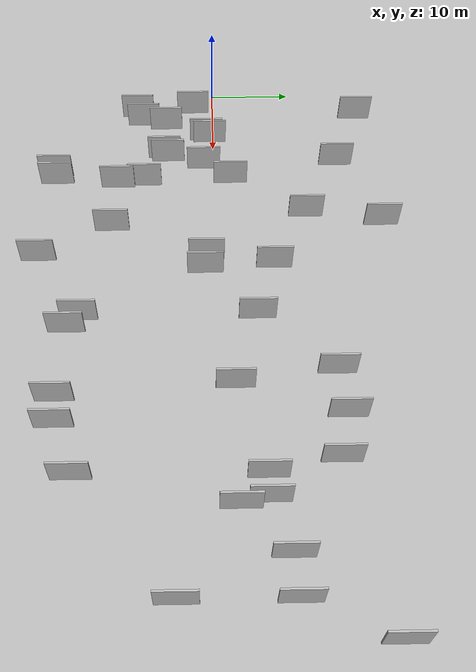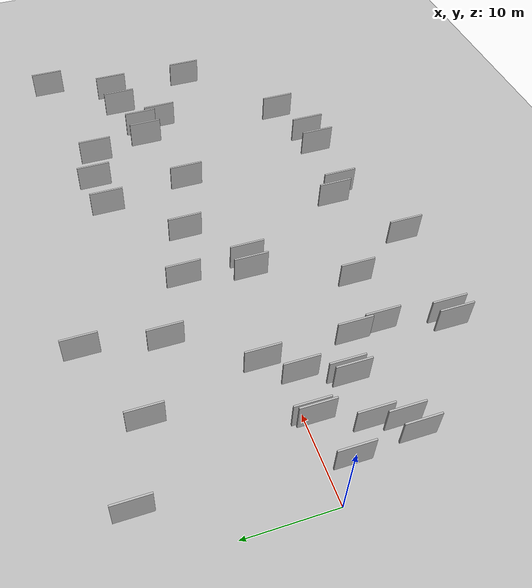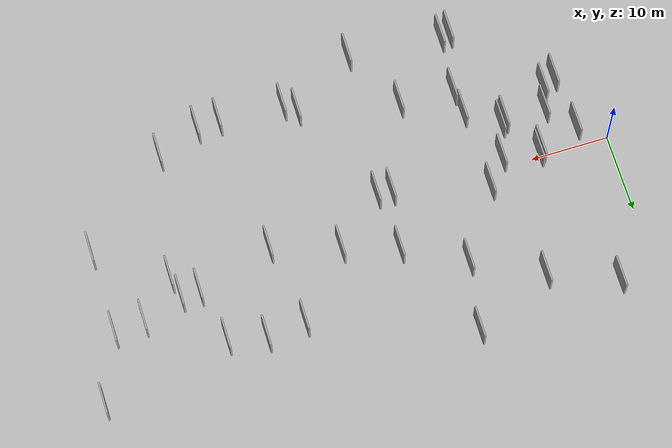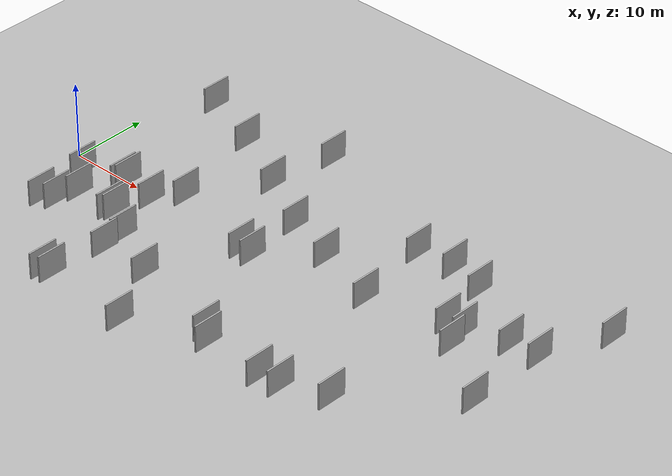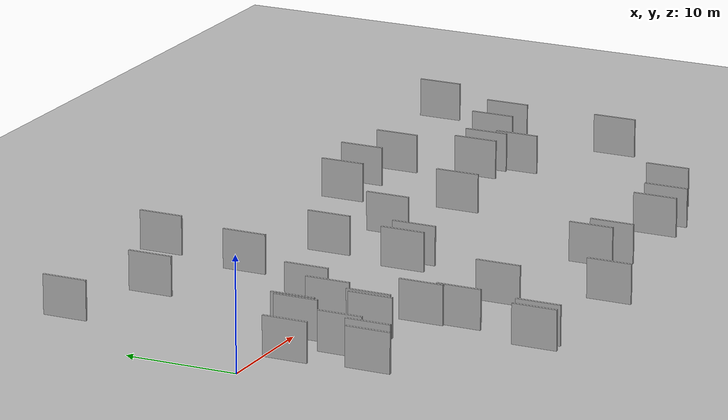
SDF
<?xml version="1.0" encoding="utf-8"?>

<sdf version="1.6">

   <world name="default">

      <gui fullscreen="0">

         <camera name="user_camera">

            <pose>-15 0 4.57585 0 0 0</pose>

            <view_controller>orbit</view_controller>

         </camera>

      </gui>

      <scene>

         <sky>

           <clouds>

             <speed>12</speed>

           </clouds>

         </sky>

         <ambient>0.4 0.4 0.4 1</ambient>

         <background>0.7 0.7 0.7 1</background>

         <shadows>1</shadows>

      </scene>

      <gravity>0 0 -9.8066</gravity>

      <magnetic_field>6e-06 2.3e-05 -4.2e-05</magnetic_field>

      <physics default="0" name="default_physics" type="ode">

         <ode>

            <solver>

               <type>quick</type>

               <iters>10</iters>

               <sor>1.0</sor>

               <use_dynamic_moi_rescaling>0</use_dynamic_moi_rescaling>

            </solver>

            <constraints>

               <cfm>0</cfm>

               <erp>0.2</erp>

               <contact_max_correcting_vel>100</contact_max_correcting_vel>

               <contact_surface_layer>0.001</contact_surface_layer>

            </constraints>

         </ode>

         <max_step_size>0.004</max_step_size>

         <real_time_factor>1</real_time_factor>

         <real_time_update_rate>250</real_time_update_rate>

      </physics>

      <light name="sun" type="directional">

         <cast_shadows>1</cast_shadows>

         <pose>0 0 10 0 0 0</pose>

         <diffuse>0.8 0.8 0.8 1</diffuse>

         <specular>0.2 0.2 0.2 1</specular>

         <attenuation>

            <range>1000</range>

            <constant>0.9</constant>

            <linear>0.01</linear>

            <quadratic>0.001</quadratic>

         </attenuation>

         <direction>-0.5 0.1 -0.9</direction>

      </light>

      <include>

         <name>ground_plane_1</name>

         <uri>model://HANNAS_ground_plane</uri>

         <pose>0 0 0  0 0 0</pose>

      </include>

      <include>

         <name>ground_plane_2</name>

         <uri>model://HANNAS_ground_plane</uri>

         <pose>100 0 0  0 0 0</pose>

      </include>

      <model name="HANNAS_wall_1">

         <static>1</static>

         <pose frame="">28.2668 -1.0079 0.0 0.000000 0.000000 1.570796</pose>

         <link name="link">

            <pose frame="">0 0 2.00 0 0 0</pose>

            <collision name="collision">

               <geometry>

                  <box>

                     <size>4.00 0.2 4.00</size>

                  </box>

               </geometry>

               <max_contacts>10</max_contacts>

               <surface>

                  <contact>

                     <ode/>

                  </contact>

                  <bounce/>

                  <friction>

                     <torsional>

                        <ode/>

                     </torsional>

                     <ode/>

                  </friction>

               </surface>

            </collision>

            <visual name="visual">

               <cast_shadows>0</cast_shadows>

               <geometry>

                  <box>

                     <size>4.00 0.2 4.00</size>

                  </box>

               </geometry>

               <material>

                  <script>

                     <uri>model://HANNAS_wall/materials/scripts</uri>

                     <uri>model://HANNAS_wall/materials/textures</uri>

                     <name>vrc/HANNAS_wall</name>

                  </script>

               </material>

            </visual>

            <self_collide>0</self_collide>

            <enable_wind>0</enable_wind>

            <kinematic>0</kinematic>

         </link>

      </model>

      <model name="HANNAS_wall_2">

         <static>1</static>

         <pose frame="">8.6708 -0.8842 0.0 0.000000 0.000000 1.570796</pose>

         <link name="link">

            <pose frame="">0 0 2.00 0 0 0</pose>

            <collision name="collision">

               <geometry>

                  <box>

                     <size>4.00 0.2 4.00</size>

                  </box>

               </geometry>

               <max_contacts>10</max_contacts>

               <surface>

                  <contact>

                     <ode/>

                  </contact>

                  <bounce/>

                  <friction>

                     <torsional>

                        <ode/>

                     </torsional>

                     <ode/>

                  </friction>

               </surface>

            </collision>

            <visual name="visual">

               <cast_shadows>0</cast_shadows>

               <geometry>

                  <box>

                     <size>4.00 0.2 4.00</size>

                  </box>

               </geometry>

               <material>

                  <script>

                     <uri>model://HANNAS_wall/materials/scripts</uri>

                     <uri>model://HANNAS_wall/materials/textures</uri>

                     <name>vrc/HANNAS_wall</name>

                  </script>

               </material>

            </visual>

            <self_collide>0</self_collide>

            <enable_wind>0</enable_wind>

            <kinematic>0</kinematic>

         </link>

      </model>

      <model name="HANNAS_wall_3">

         <static>1</static>

         <pose frame="">54.6762 -14.0078 0.0 0.000000 0.000000 1.570796</pose>

         <link name="link">

            <pose frame="">0 0 2.00 0 0 0</pose>

            <collision name="collision">

               <geometry>

                  <box>

                     <size>4.00 0.2 4.00</size>

                  </box>

               </geometry>

               <max_contacts>10</max_contacts>

               <surface>

                  <contact>

                     <ode/>

                  </contact>

                  <bounce/>

                  <friction>

                     <torsional>

                        <ode/>

                     </torsional>

                     <ode/>

                  </friction>

               </surface>

            </collision>

            <visual name="visual">

               <cast_shadows>0</cast_shadows>

               <geometry>

                  <box>

                     <size>4.00 0.2 4.00</size>

                  </box>

               </geometry>

               <material>

                  <script>

                     <uri>model://HANNAS_wall/materials/scripts</uri>

                     <uri>model://HANNAS_wall/materials/textures</uri>

                     <name>vrc/HANNAS_wall</name>

                  </script>

               </material>

            </visual>

            <self_collide>0</self_collide>

            <enable_wind>0</enable_wind>

            <kinematic>0</kinematic>

         </link>

      </model>

      <model name="HANNAS_wall_4">

         <static>1</static>

         <pose frame="">23.3382 19.3957 0.0 0.000000 0.000000 1.570796</pose>

         <link name="link">

            <pose frame="">0 0 2.00 0 0 0</pose>

            <collision name="collision">

               <geometry>

                  <box>

                     <size>4.00 0.2 4.00</size>

                  </box>

               </geometry>

               <max_contacts>10</max_contacts>

               <surface>

                  <contact>

                     <ode/>

                  </contact>

                  <bounce/>

                  <friction>

                     <torsional>

                        <ode/>

                     </torsional>

                     <ode/>

                  </friction>

               </surface>

            </collision>

            <visual name="visual">

               <cast_shadows>0</cast_shadows>

               <geometry>

                  <box>

                     <size>4.00 0.2 4.00</size>

                  </box>

               </geometry>

               <material>

                  <script>

                     <uri>model://HANNAS_wall/materials/scripts</uri>

                     <uri>model://HANNAS_wall/materials/textures</uri>

                     <name>vrc/HANNAS_wall</name>

                  </script>

               </material>

            </visual>

            <self_collide>0</self_collide>

            <enable_wind>0</enable_wind>

            <kinematic>0</kinematic>

         </link>

      </model>

      <model name="HANNAS_wall_5">

         <static>1</static>

         <pose frame="">29.5425 6.5481 0.0 0.000000 0.000000 1.570796</pose>

         <link name="link">

            <pose frame="">0 0 2.00 0 0 0</pose>

            <collision name="collision">

               <geometry>

                  <box>

                     <size>4.00 0.2 4.00</size>

                  </box>

               </geometry>

               <max_contacts>10</max_contacts>

               <surface>

                  <contact>

                     <ode/>

                  </contact>

                  <bounce/>

                  <friction>

                     <torsional>

                        <ode/>

                     </torsional>

                     <ode/>

                  </friction>

               </surface>

            </collision>

            <visual name="visual">

               <cast_shadows>0</cast_shadows>

               <geometry>

                  <box>

                     <size>4.00 0.2 4.00</size>

                  </box>

               </geometry>

               <material>

                  <script>

                     <uri>model://HANNAS_wall/materials/scripts</uri>

                     <uri>model://HANNAS_wall/materials/textures</uri>

                     <name>vrc/HANNAS_wall</name>

                  </script>

               </material>

            </visual>

            <self_collide>0</self_collide>

            <enable_wind>0</enable_wind>

            <kinematic>0</kinematic>

         </link>

      </model>

      <model name="HANNAS_wall_6">

         <static>1</static>

         <pose frame="">54.7163 4.5524 0.0 0.000000 0.000000 1.570796</pose>

         <link name="link">

            <pose frame="">0 0 2.00 0 0 0</pose>

            <collision name="collision">

               <geometry>

                  <box>

                     <size>4.00 0.2 4.00</size>

                  </box>

               </geometry>

               <max_contacts>10</max_contacts>

               <surface>

                  <contact>

                     <ode/>

                  </contact>

                  <bounce/>

                  <friction>

                     <torsional>

                        <ode/>

                     </torsional>

                     <ode/>

                  </friction>

               </surface>

            </collision>

            <visual name="visual">

               <cast_shadows>0</cast_shadows>

               <geometry>

                  <box>

                     <size>4.00 0.2 4.00</size>

                  </box>

               </geometry>

               <material>

                  <script>

                     <uri>model://HANNAS_wall/materials/scripts</uri>

                     <uri>model://HANNAS_wall/materials/textures</uri>

                     <name>vrc/HANNAS_wall</name>

                  </script>

               </material>

            </visual>

            <self_collide>0</self_collide>

            <enable_wind>0</enable_wind>

            <kinematic>0</kinematic>

         </link>

      </model>

      <model name="HANNAS_wall_7">

         <static>1</static>

         <pose frame="">14.9228 -19.2196 0.0 0.000000 0.000000 1.570796</pose>

         <link name="link">

            <pose frame="">0 0 2.00 0 0 0</pose>

            <collision name="collision">

               <geometry>

                  <box>

                     <size>4.00 0.2 4.00</size>

                  </box>

               </geometry>

               <max_contacts>10</max_contacts>

               <surface>

                  <contact>

                     <ode/>

                  </contact>

                  <bounce/>

                  <friction>

                     <torsional>

                        <ode/>

                     </torsional>

                     <ode/>

                  </friction>

               </surface>

            </collision>

            <visual name="visual">

               <cast_shadows>0</cast_shadows>

               <geometry>

                  <box>

                     <size>4.00 0.2 4.00</size>

                  </box>

               </geometry>

               <material>

                  <script>

                     <uri>model://HANNAS_wall/materials/scripts</uri>

                     <uri>model://HANNAS_wall/materials/textures</uri>

                     <name>vrc/HANNAS_wall</name>

                  </script>

               </material>

            </visual>

            <self_collide>0</self_collide>

            <enable_wind>0</enable_wind>

            <kinematic>0</kinematic>

         </link>

      </model>

      <model name="HANNAS_wall_8">

         <static>1</static>

         <pose frame="">16.2496 1.9744 0.0 0.000000 0.000000 1.570796</pose>

         <link name="link">

            <pose frame="">0 0 2.00 0 0 0</pose>

            <collision name="collision">

               <geometry>

                  <box>

                     <size>4.00 0.2 4.00</size>

                  </box>

               </geometry>

               <max_contacts>10</max_contacts>

               <surface>

                  <contact>

                     <ode/>

                  </contact>

                  <bounce/>

                  <friction>

                     <torsional>

                        <ode/>

                     </torsional>

                     <ode/>

                  </friction>

               </surface>

            </collision>

            <visual name="visual">

               <cast_shadows>0</cast_shadows>

               <geometry>

                  <box>

                     <size>4.00 0.2 4.00</size>

                  </box>

               </geometry>

               <material>

                  <script>

                     <uri>model://HANNAS_wall/materials/scripts</uri>

                     <uri>model://HANNAS_wall/materials/textures</uri>

                     <name>vrc/HANNAS_wall</name>

                  </script>

               </material>

            </visual>

            <self_collide>0</self_collide>

            <enable_wind>0</enable_wind>

            <kinematic>0</kinematic>

         </link>

      </model>

      <model name="HANNAS_wall_9">

         <static>1</static>

         <pose frame="">23.8023 -11.9276 0.0 0.000000 0.000000 1.570796</pose>

         <link name="link">

            <pose frame="">0 0 2.00 0 0 0</pose>

            <collision name="collision">

               <geometry>

                  <box>

                     <size>4.00 0.2 4.00</size>

                  </box>

               </geometry>

               <max_contacts>10</max_contacts>

               <surface>

                  <contact>

                     <ode/>

                  </contact>

                  <bounce/>

                  <friction>

                     <torsional>

                        <ode/>

                     </torsional>

                     <ode/>

                  </friction>

               </surface>

            </collision>

            <visual name="visual">

               <cast_shadows>0</cast_shadows>

               <geometry>

                  <box>

                     <size>4.00 0.2 4.00</size>

                  </box>

               </geometry>

               <material>

                  <script>

                     <uri>model://HANNAS_wall/materials/scripts</uri>

                     <uri>model://HANNAS_wall/materials/textures</uri>

                     <name>vrc/HANNAS_wall</name>

                  </script>

               </material>

            </visual>

            <self_collide>0</self_collide>

            <enable_wind>0</enable_wind>

            <kinematic>0</kinematic>

         </link>

      </model>

      <model name="HANNAS_wall_10">

         <static>1</static>

         <pose frame="">36.4630 4.3665 0.0 0.000000 0.000000 1.570796</pose>

         <link name="link">

            <pose frame="">0 0 2.00 0 0 0</pose>

            <collision name="collision">

               <geometry>

                  <box>

                     <size>4.00 0.2 4.00</size>

                  </box>

               </geometry>

               <max_contacts>10</max_contacts>

               <surface>

                  <contact>

                     <ode/>

                  </contact>

                  <bounce/>

                  <friction>

                     <torsional>

                        <ode/>

                     </torsional>

                     <ode/>

                  </friction>

               </surface>

            </collision>

            <visual name="visual">

               <cast_shadows>0</cast_shadows>

               <geometry>

                  <box>

                     <size>4.00 0.2 4.00</size>

                  </box>

               </geometry>

               <material>

                  <script>

                     <uri>model://HANNAS_wall/materials/scripts</uri>

                     <uri>model://HANNAS_wall/materials/textures</uri>

                     <name>vrc/HANNAS_wall</name>

                  </script>

               </material>

            </visual>

            <self_collide>0</self_collide>

            <enable_wind>0</enable_wind>

            <kinematic>0</kinematic>

         </link>

      </model>

      <model name="HANNAS_wall_11">

         <static>1</static>

         <pose frame="">57.1214 4.6170 0.0 0.000000 0.000000 1.570796</pose>

         <link name="link">

            <pose frame="">0 0 2.00 0 0 0</pose>

            <collision name="collision">

               <geometry>

                  <box>

                     <size>4.00 0.2 4.00</size>

                  </box>

               </geometry>

               <max_contacts>10</max_contacts>

               <surface>

                  <contact>

                     <ode/>

                  </contact>

                  <bounce/>

                  <friction>

                     <torsional>

                        <ode/>

                     </torsional>

                     <ode/>

                  </friction>

               </surface>

            </collision>

            <visual name="visual">

               <cast_shadows>0</cast_shadows>

               <geometry>

                  <box>

                     <size>4.00 0.2 4.00</size>

                  </box>

               </geometry>

               <material>

                  <script>

                     <uri>model://HANNAS_wall/materials/scripts</uri>

                     <uri>model://HANNAS_wall/materials/textures</uri>

                     <name>vrc/HANNAS_wall</name>

                  </script>

               </material>

            </visual>

            <self_collide>0</self_collide>

            <enable_wind>0</enable_wind>

            <kinematic>0</kinematic>

         </link>

      </model>

      <model name="HANNAS_wall_12">

         <static>1</static>

         <pose frame="">30.1767 -1.1551 0.0 0.000000 0.000000 1.570796</pose>

         <link name="link">

            <pose frame="">0 0 2.00 0 0 0</pose>

            <collision name="collision">

               <geometry>

                  <box>

                     <size>4.00 0.2 4.00</size>

                  </box>

               </geometry>

               <max_contacts>10</max_contacts>

               <surface>

                  <contact>

                     <ode/>

                  </contact>

                  <bounce/>

                  <friction>

                     <torsional>

                        <ode/>

                     </torsional>

                     <ode/>

                  </friction>

               </surface>

            </collision>

            <visual name="visual">

               <cast_shadows>0</cast_shadows>

               <geometry>

                  <box>

                     <size>4.00 0.2 4.00</size>

                  </box>

               </geometry>

               <material>

                  <script>

                     <uri>model://HANNAS_wall/materials/scripts</uri>

                     <uri>model://HANNAS_wall/materials/textures</uri>

                     <name>vrc/HANNAS_wall</name>

                  </script>

               </material>

            </visual>

            <self_collide>0</self_collide>

            <enable_wind>0</enable_wind>

            <kinematic>0</kinematic>

         </link>

      </model>

      <model name="HANNAS_wall_13">

         <static>1</static>

         <pose frame="">3.4895 -2.5357 0.0 0.000000 0.000000 1.570796</pose>

         <link name="link">

            <pose frame="">0 0 2.00 0 0 0</pose>

            <collision name="collision">

               <geometry>

                  <box>

                     <size>4.00 0.2 4.00</size>

                  </box>

               </geometry>

               <max_contacts>10</max_contacts>

               <surface>

                  <contact>

                     <ode/>

                  </contact>

                  <bounce/>

                  <friction>

                     <torsional>

                        <ode/>

                     </torsional>

                     <ode/>

                  </friction>

               </surface>

            </collision>

            <visual name="visual">

               <cast_shadows>0</cast_shadows>

               <geometry>

                  <box>

                     <size>4.00 0.2 4.00</size>

                  </box>

               </geometry>

               <material>

                  <script>

                     <uri>model://HANNAS_wall/materials/scripts</uri>

                     <uri>model://HANNAS_wall/materials/textures</uri>

                     <name>vrc/HANNAS_wall</name>

                  </script>

               </material>

            </visual>

            <self_collide>0</self_collide>

            <enable_wind>0</enable_wind>

            <kinematic>0</kinematic>

         </link>

      </model>

      <model name="HANNAS_wall_14">

         <static>1</static>

         <pose frame="">13.7443 -1.2321 0.0 0.000000 0.000000 1.570796</pose>

         <link name="link">

            <pose frame="">0 0 2.00 0 0 0</pose>

            <collision name="collision">

               <geometry>

                  <box>

                     <size>4.00 0.2 4.00</size>

                  </box>

               </geometry>

               <max_contacts>10</max_contacts>

               <surface>

                  <contact>

                     <ode/>

                  </contact>

                  <bounce/>

                  <friction>

                     <torsional>

                        <ode/>

                     </torsional>

                     <ode/>

                  </friction>

               </surface>

            </collision>

            <visual name="visual">

               <cast_shadows>0</cast_shadows>

               <geometry>

                  <box>

                     <size>4.00 0.2 4.00</size>

                  </box>

               </geometry>

               <material>

                  <script>

                     <uri>model://HANNAS_wall/materials/scripts</uri>

                     <uri>model://HANNAS_wall/materials/textures</uri>

                     <name>vrc/HANNAS_wall</name>

                  </script>

               </material>

            </visual>

            <self_collide>0</self_collide>

            <enable_wind>0</enable_wind>

            <kinematic>0</kinematic>

         </link>

      </model>

      <model name="HANNAS_wall_15">

         <static>1</static>

         <pose frame="">57.7014 1.8838 0.0 0.000000 0.000000 1.570796</pose>

         <link name="link">

            <pose frame="">0 0 2.00 0 0 0</pose>

            <collision name="collision">

               <geometry>

                  <box>

                     <size>4.00 0.2 4.00</size>

                  </box>

               </geometry>

               <max_contacts>10</max_contacts>

               <surface>

                  <contact>

                     <ode/>

                  </contact>

                  <bounce/>

                  <friction>

                     <torsional>

                        <ode/>

                     </torsional>

                     <ode/>

                  </friction>

               </surface>

            </collision>

            <visual name="visual">

               <cast_shadows>0</cast_shadows>

               <geometry>

                  <box>

                     <size>4.00 0.2 4.00</size>

                  </box>

               </geometry>

               <material>

                  <script>

                     <uri>model://HANNAS_wall/materials/scripts</uri>

                     <uri>model://HANNAS_wall/materials/textures</uri>

                     <name>vrc/HANNAS_wall</name>

                  </script>

               </material>

            </visual>

            <self_collide>0</self_collide>

            <enable_wind>0</enable_wind>

            <kinematic>0</kinematic>

         </link>

      </model>

      <model name="HANNAS_wall_16">

         <static>1</static>

         <pose frame="">5.7710 -8.8082 0.0 0.000000 0.000000 1.570796</pose>

         <link name="link">

            <pose frame="">0 0 2.00 0 0 0</pose>

            <collision name="collision">

               <geometry>

                  <box>

                     <size>4.00 0.2 4.00</size>

                  </box>

               </geometry>

               <max_contacts>10</max_contacts>

               <surface>

                  <contact>

                     <ode/>

                  </contact>

                  <bounce/>

                  <friction>

                     <torsional>

                        <ode/>

                     </torsional>

                     <ode/>

                  </friction>

               </surface>

            </collision>

            <visual name="visual">

               <cast_shadows>0</cast_shadows>

               <geometry>

                  <box>

                     <size>4.00 0.2 4.00</size>

                  </box>

               </geometry>

               <material>

                  <script>

                     <uri>model://HANNAS_wall/materials/scripts</uri>

                     <uri>model://HANNAS_wall/materials/textures</uri>

                     <name>vrc/HANNAS_wall</name>

                  </script>

               </material>

            </visual>

            <self_collide>0</self_collide>

            <enable_wind>0</enable_wind>

            <kinematic>0</kinematic>

         </link>

      </model>

      <model name="HANNAS_wall_17">

         <static>1</static>

         <pose frame="">6.5337 -5.9366 0.0 0.000000 0.000000 1.570796</pose>

         <link name="link">

            <pose frame="">0 0 2.00 0 0 0</pose>

            <collision name="collision">

               <geometry>

                  <box>

                     <size>4.00 0.2 4.00</size>

                  </box>

               </geometry>

               <max_contacts>10</max_contacts>

               <surface>

                  <contact>

                     <ode/>

                  </contact>

                  <bounce/>

                  <friction>

                     <torsional>

                        <ode/>

                     </torsional>

                     <ode/>

                  </friction>

               </surface>

            </collision>

            <visual name="visual">

               <cast_shadows>0</cast_shadows>

               <geometry>

                  <box>

                     <size>4.00 0.2 4.00</size>

                  </box>

               </geometry>

               <material>

                  <script>

                     <uri>model://HANNAS_wall/materials/scripts</uri>

                     <uri>model://HANNAS_wall/materials/textures</uri>

                     <name>vrc/HANNAS_wall</name>

                  </script>

               </material>

            </visual>

            <self_collide>0</self_collide>

            <enable_wind>0</enable_wind>

            <kinematic>0</kinematic>

         </link>

      </model>

      <model name="HANNAS_wall_18">

         <static>1</static>

         <pose frame="">12.4042 -5.6066 0.0 0.000000 0.000000 1.570796</pose>

         <link name="link">

            <pose frame="">0 0 2.00 0 0 0</pose>

            <collision name="collision">

               <geometry>

                  <box>

                     <size>4.00 0.2 4.00</size>

                  </box>

               </geometry>

               <max_contacts>10</max_contacts>

               <surface>

                  <contact>

                     <ode/>

                  </contact>

                  <bounce/>

                  <friction>

                     <torsional>

                        <ode/>

                     </torsional>

                     <ode/>

                  </friction>

               </surface>

            </collision>

            <visual name="visual">

               <cast_shadows>0</cast_shadows>

               <geometry>

                  <box>

                     <size>4.00 0.2 4.00</size>

                  </box>

               </geometry>

               <material>

                  <script>

                     <uri>model://HANNAS_wall/materials/scripts</uri>

                     <uri>model://HANNAS_wall/materials/textures</uri>

                     <name>vrc/HANNAS_wall</name>

                  </script>

               </material>

            </visual>

            <self_collide>0</self_collide>

            <enable_wind>0</enable_wind>

            <kinematic>0</kinematic>

         </link>

      </model>

      <model name="HANNAS_wall_19">

         <static>1</static>

         <pose frame="">16.5440 -8.3496 0.0 0.000000 0.000000 1.570796</pose>

         <link name="link">

            <pose frame="">0 0 2.00 0 0 0</pose>

            <collision name="collision">

               <geometry>

                  <box>

                     <size>4.00 0.2 4.00</size>

                  </box>

               </geometry>

               <max_contacts>10</max_contacts>

               <surface>

                  <contact>

                     <ode/>

                  </contact>

                  <bounce/>

                  <friction>

                     <torsional>

                        <ode/>

                     </torsional>

                     <ode/>

                  </friction>

               </surface>

            </collision>

            <visual name="visual">

               <cast_shadows>0</cast_shadows>

               <geometry>

                  <box>

                     <size>4.00 0.2 4.00</size>

                  </box>

               </geometry>

               <material>

                  <script>

                     <uri>model://HANNAS_wall/materials/scripts</uri>

                     <uri>model://HANNAS_wall/materials/textures</uri>

                     <name>vrc/HANNAS_wall</name>

                  </script>

               </material>

            </visual>

            <self_collide>0</self_collide>

            <enable_wind>0</enable_wind>

            <kinematic>0</kinematic>

         </link>

      </model>

      <model name="HANNAS_wall_20">

         <static>1</static>

         <pose frame="">53.2298 11.5995 0.0 0.000000 0.000000 1.570796</pose>

         <link name="link">

            <pose frame="">0 0 2.00 0 0 0</pose>

            <collision name="collision">

               <geometry>

                  <box>

                     <size>4.00 0.2 4.00</size>

                  </box>

               </geometry>

               <max_contacts>10</max_contacts>

               <surface>

                  <contact>

                     <ode/>

                  </contact>

                  <bounce/>

                  <friction>

                     <torsional>

                        <ode/>

                     </torsional>

                     <ode/>

                  </friction>

               </surface>

            </collision>

            <visual name="visual">

               <cast_shadows>0</cast_shadows>

               <geometry>

                  <box>

                     <size>4.00 0.2 4.00</size>

                  </box>

               </geometry>

               <material>

                  <script>

                     <uri>model://HANNAS_wall/materials/scripts</uri>

                     <uri>model://HANNAS_wall/materials/textures</uri>

                     <name>vrc/HANNAS_wall</name>

                  </script>

               </material>

            </visual>

            <self_collide>0</self_collide>

            <enable_wind>0</enable_wind>

            <kinematic>0</kinematic>

         </link>

      </model>

      <model name="HANNAS_wall_21">

         <static>1</static>

         <pose frame="">69.6080 15.0760 0.0 0.000000 0.000000 1.570796</pose>

         <link name="link">

            <pose frame="">0 0 2.00 0 0 0</pose>

            <collision name="collision">

               <geometry>

                  <box>

                     <size>4.00 0.2 4.00</size>

                  </box>

               </geometry>

               <max_contacts>10</max_contacts>

               <surface>

                  <contact>

                     <ode/>

                  </contact>

                  <bounce/>

                  <friction>

                     <torsional>

                        <ode/>

                     </torsional>

                     <ode/>

                  </friction>

               </surface>

            </collision>

            <visual name="visual">

               <cast_shadows>0</cast_shadows>

               <geometry>

                  <box>

                     <size>4.00 0.2 4.00</size>

                  </box>

               </geometry>

               <material>

                  <script>

                     <uri>model://HANNAS_wall/materials/scripts</uri>

                     <uri>model://HANNAS_wall/materials/textures</uri>

                     <name>vrc/HANNAS_wall</name>

                  </script>

               </material>

            </visual>

            <self_collide>0</self_collide>

            <enable_wind>0</enable_wind>

            <kinematic>0</kinematic>

         </link>

      </model>

      <model name="HANNAS_wall_22">

         <static>1</static>

         <pose frame="">16.8494 -11.5884 0.0 0.000000 0.000000 1.570796</pose>

         <link name="link">

            <pose frame="">0 0 2.00 0 0 0</pose>

            <collision name="collision">

               <geometry>

                  <box>

                     <size>4.00 0.2 4.00</size>

                  </box>

               </geometry>

               <max_contacts>10</max_contacts>

               <surface>

                  <contact>

                     <ode/>

                  </contact>

                  <bounce/>

                  <friction>

                     <torsional>

                        <ode/>

                     </torsional>

                     <ode/>

                  </friction>

               </surface>

            </collision>

            <visual name="visual">

               <cast_shadows>0</cast_shadows>

               <geometry>

                  <box>

                     <size>4.00 0.2 4.00</size>

                  </box>

               </geometry>

               <material>

                  <script>

                     <uri>model://HANNAS_wall/materials/scripts</uri>

                     <uri>model://HANNAS_wall/materials/textures</uri>

                     <name>vrc/HANNAS_wall</name>

                  </script>

               </material>

            </visual>

            <self_collide>0</self_collide>

            <enable_wind>0</enable_wind>

            <kinematic>0</kinematic>

         </link>

      </model>

      <model name="HANNAS_wall_23">

         <static>1</static>

         <pose frame="">66.1559 6.6762 0.0 0.000000 0.000000 1.570796</pose>

         <link name="link">

            <pose frame="">0 0 2.00 0 0 0</pose>

            <collision name="collision">

               <geometry>

                  <box>

                     <size>4.00 0.2 4.00</size>

                  </box>

               </geometry>

               <max_contacts>10</max_contacts>

               <surface>

                  <contact>

                     <ode/>

                  </contact>

                  <bounce/>

                  <friction>

                     <torsional>

                        <ode/>

                     </torsional>

                     <ode/>

                  </friction>

               </surface>

            </collision>

            <visual name="visual">

               <cast_shadows>0</cast_shadows>

               <geometry>

                  <box>

                     <size>4.00 0.2 4.00</size>

                  </box>

               </geometry>

               <material>

                  <script>

                     <uri>model://HANNAS_wall/materials/scripts</uri>

                     <uri>model://HANNAS_wall/materials/textures</uri>

                     <name>vrc/HANNAS_wall</name>

                  </script>

               </material>

            </visual>

            <self_collide>0</self_collide>

            <enable_wind>0</enable_wind>

            <kinematic>0</kinematic>

         </link>

      </model>

      <model name="HANNAS_wall_24">

         <static>1</static>

         <pose frame="">9.0174 -0.4390 0.0 0.000000 0.000000 1.570796</pose>

         <link name="link">

            <pose frame="">0 0 2.00 0 0 0</pose>

            <collision name="collision">

               <geometry>

                  <box>

                     <size>4.00 0.2 4.00</size>

                  </box>

               </geometry>

               <max_contacts>10</max_contacts>

               <surface>

                  <contact>

                     <ode/>

                  </contact>

                  <bounce/>

                  <friction>

                     <torsional>

                        <ode/>

                     </torsional>

                     <ode/>

                  </friction>

               </surface>

            </collision>

            <visual name="visual">

               <cast_shadows>0</cast_shadows>

               <geometry>

                  <box>

                     <size>4.00 0.2 4.00</size>

                  </box>

               </geometry>

               <material>

                  <script>

                     <uri>model://HANNAS_wall/materials/scripts</uri>

                     <uri>model://HANNAS_wall/materials/textures</uri>

                     <name>vrc/HANNAS_wall</name>

                  </script>

               </material>

            </visual>

            <self_collide>0</self_collide>

            <enable_wind>0</enable_wind>

            <kinematic>0</kinematic>

         </link>

      </model>

      <model name="HANNAS_wall_25">

         <static>1</static>

         <pose frame="">13.3487 15.0211 0.0 0.000000 0.000000 1.570796</pose>

         <link name="link">

            <pose frame="">0 0 2.00 0 0 0</pose>

            <collision name="collision">

               <geometry>

                  <box>

                     <size>4.00 0.2 4.00</size>

                  </box>

               </geometry>

               <max_contacts>10</max_contacts>

               <surface>

                  <contact>

                     <ode/>

                  </contact>

                  <bounce/>

                  <friction>

                     <torsional>

                        <ode/>

                     </torsional>

                     <ode/>

                  </friction>

               </surface>

            </collision>

            <visual name="visual">

               <cast_shadows>0</cast_shadows>

               <geometry>

                  <box>

                     <size>4.00 0.2 4.00</size>

                  </box>

               </geometry>

               <material>

                  <script>

                     <uri>model://HANNAS_wall/materials/scripts</uri>

                     <uri>model://HANNAS_wall/materials/textures</uri>

                     <name>vrc/HANNAS_wall</name>

                  </script>

               </material>

            </visual>

            <self_collide>0</self_collide>

            <enable_wind>0</enable_wind>

            <kinematic>0</kinematic>

         </link>

      </model>

      <model name="HANNAS_wall_26">

         <static>1</static>

         <pose frame="">62.2832 6.3707 0.0 0.000000 0.000000 1.570796</pose>

         <link name="link">

            <pose frame="">0 0 2.00 0 0 0</pose>

            <collision name="collision">

               <geometry>

                  <box>

                     <size>4.00 0.2 4.00</size>

                  </box>

               </geometry>

               <max_contacts>10</max_contacts>

               <surface>

                  <contact>

                     <ode/>

                  </contact>

                  <bounce/>

                  <friction>

                     <torsional>

                        <ode/>

                     </torsional>

                     <ode/>

                  </friction>

               </surface>

            </collision>

            <visual name="visual">

               <cast_shadows>0</cast_shadows>

               <geometry>

                  <box>

                     <size>4.00 0.2 4.00</size>

                  </box>

               </geometry>

               <material>

                  <script>

                     <uri>model://HANNAS_wall/materials/scripts</uri>

                     <uri>model://HANNAS_wall/materials/textures</uri>

                     <name>vrc/HANNAS_wall</name>

                  </script>

               </material>

            </visual>

            <self_collide>0</self_collide>

            <enable_wind>0</enable_wind>

            <kinematic>0</kinematic>

         </link>

      </model>

      <model name="HANNAS_wall_27">

         <static>1</static>

         <pose frame="">4.8091 18.3218 0.0 0.000000 0.000000 1.570796</pose>

         <link name="link">

            <pose frame="">0 0 2.00 0 0 0</pose>

            <collision name="collision">

               <geometry>

                  <box>

                     <size>4.00 0.2 4.00</size>

                  </box>

               </geometry>

               <max_contacts>10</max_contacts>

               <surface>

                  <contact>

                     <ode/>

                  </contact>

                  <bounce/>

                  <friction>

                     <torsional>

                        <ode/>

                     </torsional>

                     <ode/>

                  </friction>

               </surface>

            </collision>

            <visual name="visual">

               <cast_shadows>0</cast_shadows>

               <geometry>

                  <box>

                     <size>4.00 0.2 4.00</size>

                  </box>

               </geometry>

               <material>

                  <script>

                     <uri>model://HANNAS_wall/materials/scripts</uri>

                     <uri>model://HANNAS_wall/materials/textures</uri>

                     <name>vrc/HANNAS_wall</name>

                  </script>

               </material>

            </visual>

            <self_collide>0</self_collide>

            <enable_wind>0</enable_wind>

            <kinematic>0</kinematic>

         </link>

      </model>

      <model name="HANNAS_wall_28">

         <static>1</static>

         <pose frame="">46.2791 -16.3998 0.0 0.000000 0.000000 1.570796</pose>

         <link name="link">

            <pose frame="">0 0 2.00 0 0 0</pose>

            <collision name="collision">

               <geometry>

                  <box>

                     <size>4.00 0.2 4.00</size>

                  </box>

               </geometry>

               <max_contacts>10</max_contacts>

               <surface>

                  <contact>

                     <ode/>

                  </contact>

                  <bounce/>

                  <friction>

                     <torsional>

                        <ode/>

                     </torsional>

                     <ode/>

                  </friction>

               </surface>

            </collision>

            <visual name="visual">

               <cast_shadows>0</cast_shadows>

               <geometry>

                  <box>

                     <size>4.00 0.2 4.00</size>

                  </box>

               </geometry>

               <material>

                  <script>

                     <uri>model://HANNAS_wall/materials/scripts</uri>

                     <uri>model://HANNAS_wall/materials/textures</uri>

                     <name>vrc/HANNAS_wall</name>

                  </script>

               </material>

            </visual>

            <self_collide>0</self_collide>

            <enable_wind>0</enable_wind>

            <kinematic>0</kinematic>

         </link>

      </model>

      <model name="HANNAS_wall_29">

         <static>1</static>

         <pose frame="">21.8940 10.6781 0.0 0.000000 0.000000 1.570796</pose>

         <link name="link">

            <pose frame="">0 0 2.00 0 0 0</pose>

            <collision name="collision">

               <geometry>

                  <box>

                     <size>4.00 0.2 4.00</size>

                  </box>

               </geometry>

               <max_contacts>10</max_contacts>

               <surface>

                  <contact>

                     <ode/>

                  </contact>

                  <bounce/>

                  <friction>

                     <torsional>

                        <ode/>

                     </torsional>

                     <ode/>

                  </friction>

               </surface>

            </collision>

            <visual name="visual">

               <cast_shadows>0</cast_shadows>

               <geometry>

                  <box>

                     <size>4.00 0.2 4.00</size>

                  </box>

               </geometry>

               <material>

                  <script>

                     <uri>model://HANNAS_wall/materials/scripts</uri>

                     <uri>model://HANNAS_wall/materials/textures</uri>

                     <name>vrc/HANNAS_wall</name>

                  </script>

               </material>

            </visual>

            <self_collide>0</self_collide>

            <enable_wind>0</enable_wind>

            <kinematic>0</kinematic>

         </link>

      </model>

      <model name="HANNAS_wall_30">

         <static>1</static>

         <pose frame="">16.1255 -19.0028 0.0 0.000000 0.000000 1.570796</pose>

         <link name="link">

            <pose frame="">0 0 2.00 0 0 0</pose>

            <collision name="collision">

               <geometry>

                  <box>

                     <size>4.00 0.2 4.00</size>

                  </box>

               </geometry>

               <max_contacts>10</max_contacts>

               <surface>

                  <contact>

                     <ode/>

                  </contact>

                  <bounce/>

                  <friction>

                     <torsional>

                        <ode/>

                     </torsional>

                     <ode/>

                  </friction>

               </surface>

            </collision>

            <visual name="visual">

               <cast_shadows>0</cast_shadows>

               <geometry>

                  <box>

                     <size>4.00 0.2 4.00</size>

                  </box>

               </geometry>

               <material>

                  <script>

                     <uri>model://HANNAS_wall/materials/scripts</uri>

                     <uri>model://HANNAS_wall/materials/textures</uri>

                     <name>vrc/HANNAS_wall</name>

                  </script>

               </material>

            </visual>

            <self_collide>0</self_collide>

            <enable_wind>0</enable_wind>

            <kinematic>0</kinematic>

         </link>

      </model>

      <model name="HANNAS_wall_31">

         <static>1</static>

         <pose frame="">11.8265 -6.0397 0.0 0.000000 0.000000 1.570796</pose>

         <link name="link">

            <pose frame="">0 0 2.00 0 0 0</pose>

            <collision name="collision">

               <geometry>

                  <box>

                     <size>4.00 0.2 4.00</size>

                  </box>

               </geometry>

               <max_contacts>10</max_contacts>

               <surface>

                  <contact>

                     <ode/>

                  </contact>

                  <bounce/>

                  <friction>

                     <torsional>

                        <ode/>

                     </torsional>

                     <ode/>

                  </friction>

               </surface>

            </collision>

            <visual name="visual">

               <cast_shadows>0</cast_shadows>

               <geometry>

                  <box>

                     <size>4.00 0.2 4.00</size>

                  </box>

               </geometry>

               <material>

                  <script>

                     <uri>model://HANNAS_wall/materials/scripts</uri>

                     <uri>model://HANNAS_wall/materials/textures</uri>

                     <name>vrc/HANNAS_wall</name>

                  </script>

               </material>

            </visual>

            <self_collide>0</self_collide>

            <enable_wind>0</enable_wind>

            <kinematic>0</kinematic>

         </link>

      </model>

      <model name="HANNAS_wall_32">

         <static>1</static>

         <pose frame="">49.1987 -16.1757 0.0 0.000000 0.000000 1.570796</pose>

         <link name="link">

            <pose frame="">0 0 2.00 0 0 0</pose>

            <collision name="collision">

               <geometry>

                  <box>

                     <size>4.00 0.2 4.00</size>

                  </box>

               </geometry>

               <max_contacts>10</max_contacts>

               <surface>

                  <contact>

                     <ode/>

                  </contact>

                  <bounce/>

                  <friction>

                     <torsional>

                        <ode/>

                     </torsional>

                     <ode/>

                  </friction>

               </surface>

            </collision>

            <visual name="visual">

               <cast_shadows>0</cast_shadows>

               <geometry>

                  <box>

                     <size>4.00 0.2 4.00</size>

                  </box>

               </geometry>

               <material>

                  <script>

                     <uri>model://HANNAS_wall/materials/scripts</uri>

                     <uri>model://HANNAS_wall/materials/textures</uri>

                     <name>vrc/HANNAS_wall</name>

                  </script>

               </material>

            </visual>

            <self_collide>0</self_collide>

            <enable_wind>0</enable_wind>

            <kinematic>0</kinematic>

         </link>

      </model>

      <model name="HANNAS_wall_33">

         <static>1</static>

         <pose frame="">36.4477 -14.7210 0.0 0.000000 0.000000 1.570796</pose>

         <link name="link">

            <pose frame="">0 0 2.00 0 0 0</pose>

            <collision name="collision">

               <geometry>

                  <box>

                     <size>4.00 0.2 4.00</size>

                  </box>

               </geometry>

               <max_contacts>10</max_contacts>

               <surface>

                  <contact>

                     <ode/>

                  </contact>

                  <bounce/>

                  <friction>

                     <torsional>

                        <ode/>

                     </torsional>

                     <ode/>

                  </friction>

               </surface>

            </collision>

            <visual name="visual">

               <cast_shadows>0</cast_shadows>

               <geometry>

                  <box>

                     <size>4.00 0.2 4.00</size>

                  </box>

               </geometry>

               <material>

                  <script>

                     <uri>model://HANNAS_wall/materials/scripts</uri>

                     <uri>model://HANNAS_wall/materials/textures</uri>

                     <name>vrc/HANNAS_wall</name>

                  </script>

               </material>

            </visual>

            <self_collide>0</self_collide>

            <enable_wind>0</enable_wind>

            <kinematic>0</kinematic>

         </link>

      </model>

      <model name="HANNAS_wall_34">

         <static>1</static>

         <pose frame="">44.9988 1.7544 0.0 0.000000 0.000000 1.570796</pose>

         <link name="link">

            <pose frame="">0 0 2.00 0 0 0</pose>

            <collision name="collision">

               <geometry>

                  <box>

                     <size>4.00 0.2 4.00</size>

                  </box>

               </geometry>

               <max_contacts>10</max_contacts>

               <surface>

                  <contact>

                     <ode/>

                  </contact>

                  <bounce/>

                  <friction>

                     <torsional>

                        <ode/>

                     </torsional>

                     <ode/>

                  </friction>

               </surface>

            </collision>

            <visual name="visual">

               <cast_shadows>0</cast_shadows>

               <geometry>

                  <box>

                     <size>4.00 0.2 4.00</size>

                  </box>

               </geometry>

               <material>

                  <script>

                     <uri>model://HANNAS_wall/materials/scripts</uri>

                     <uri>model://HANNAS_wall/materials/textures</uri>

                     <name>vrc/HANNAS_wall</name>

                  </script>

               </material>

            </visual>

            <self_collide>0</self_collide>

            <enable_wind>0</enable_wind>

            <kinematic>0</kinematic>

         </link>

      </model>

      <model name="HANNAS_wall_35">

         <static>1</static>

         <pose frame="">43.4542 12.1816 0.0 0.000000 0.000000 1.570796</pose>

         <link name="link">

            <pose frame="">0 0 2.00 0 0 0</pose>

            <collision name="collision">

               <geometry>

                  <box>

                     <size>4.00 0.2 4.00</size>

                  </box>

               </geometry>

               <max_contacts>10</max_contacts>

               <surface>

                  <contact>

                     <ode/>

                  </contact>

                  <bounce/>

                  <friction>

                     <torsional>

                        <ode/>

                     </torsional>

                     <ode/>

                  </friction>

               </surface>

            </collision>

            <visual name="visual">

               <cast_shadows>0</cast_shadows>

               <geometry>

                  <box>

                     <size>4.00 0.2 4.00</size>

                  </box>

               </geometry>

               <material>

                  <script>

                     <uri>model://HANNAS_wall/materials/scripts</uri>

                     <uri>model://HANNAS_wall/materials/textures</uri>

                     <name>vrc/HANNAS_wall</name>

                  </script>

               </material>

            </visual>

            <self_collide>0</self_collide>

            <enable_wind>0</enable_wind>

            <kinematic>0</kinematic>

         </link>

      </model>

      <model name="HANNAS_wall_36">

         <static>1</static>

         <pose frame="">38.0004 -15.9581 0.0 0.000000 0.000000 1.570796</pose>

         <link name="link">

            <pose frame="">0 0 2.00 0 0 0</pose>

            <collision name="collision">

               <geometry>

                  <box>

                     <size>4.00 0.2 4.00</size>

                  </box>

               </geometry>

               <max_contacts>10</max_contacts>

               <surface>

                  <contact>

                     <ode/>

                  </contact>

                  <bounce/>

                  <friction>

                     <torsional>

                        <ode/>

                     </torsional>

                     <ode/>

                  </friction>

               </surface>

            </collision>

            <visual name="visual">

               <cast_shadows>0</cast_shadows>

               <geometry>

                  <box>

                     <size>4.00 0.2 4.00</size>

                  </box>

               </geometry>

               <material>

                  <script>

                     <uri>model://HANNAS_wall/materials/scripts</uri>

                     <uri>model://HANNAS_wall/materials/textures</uri>

                     <name>vrc/HANNAS_wall</name>

                  </script>

               </material>

            </visual>

            <self_collide>0</self_collide>

            <enable_wind>0</enable_wind>

            <kinematic>0</kinematic>

         </link>

      </model>

      <model name="HANNAS_wall_37">

         <static>1</static>

         <pose frame="">48.4532 12.7418 0.0 0.000000 0.000000 1.570796</pose>

         <link name="link">

            <pose frame="">0 0 2.00 0 0 0</pose>

            <collision name="collision">

               <geometry>

                  <box>

                     <size>4.00 0.2 4.00</size>

                  </box>

               </geometry>

               <max_contacts>10</max_contacts>

               <surface>

                  <contact>

                     <ode/>

                  </contact>

                  <bounce/>

                  <friction>

                     <torsional>

                        <ode/>

                     </torsional>

                     <ode/>

                  </friction>

               </surface>

            </collision>

            <visual name="visual">

               <cast_shadows>0</cast_shadows>

               <geometry>

                  <box>

                     <size>4.00 0.2 4.00</size>

                  </box>

               </geometry>

               <material>

                  <script>

                     <uri>model://HANNAS_wall/materials/scripts</uri>

                     <uri>model://HANNAS_wall/materials/textures</uri>

                     <name>vrc/HANNAS_wall</name>

                  </script>

               </material>

            </visual>

            <self_collide>0</self_collide>

            <enable_wind>0</enable_wind>

            <kinematic>0</kinematic>

         </link>

      </model>

      <model name="HANNAS_wall_38">

         <static>1</static>

         <pose frame="">28.1932 -19.9971 0.0 0.000000 0.000000 1.570796</pose>

         <link name="link">

            <pose frame="">0 0 2.00 0 0 0</pose>

            <collision name="collision">

               <geometry>

                  <box>

                     <size>4.00 0.2 4.00</size>

                  </box>

               </geometry>

               <max_contacts>10</max_contacts>

               <surface>

                  <contact>

                     <ode/>

                  </contact>

                  <bounce/>

                  <friction>

                     <torsional>

                        <ode/>

                     </torsional>

                     <ode/>

                  </friction>

               </surface>

            </collision>

            <visual name="visual">

               <cast_shadows>0</cast_shadows>

               <geometry>

                  <box>

                     <size>4.00 0.2 4.00</size>

                  </box>

               </geometry>

               <material>

                  <script>

                     <uri>model://HANNAS_wall/materials/scripts</uri>

                     <uri>model://HANNAS_wall/materials/textures</uri>

                     <name>vrc/HANNAS_wall</name>

                  </script>

               </material>

            </visual>

            <self_collide>0</self_collide>

            <enable_wind>0</enable_wind>

            <kinematic>0</kinematic>

         </link>

      </model>

      <model name="HANNAS_wall_39">

         <static>1</static>

         <pose frame="">4.0911 -9.6189 0.0 0.000000 0.000000 1.570796</pose>

         <link name="link">

            <pose frame="">0 0 2.00 0 0 0</pose>

            <collision name="collision">

               <geometry>

                  <box>

                     <size>4.00 0.2 4.00</size>

                  </box>

               </geometry>

               <max_contacts>10</max_contacts>

               <surface>

                  <contact>

                     <ode/>

                  </contact>

                  <bounce/>

                  <friction>

                     <torsional>

                        <ode/>

                     </torsional>

                     <ode/>

                  </friction>

               </surface>

            </collision>

            <visual name="visual">

               <cast_shadows>0</cast_shadows>

               <geometry>

                  <box>

                     <size>4.00 0.2 4.00</size>

                  </box>

               </geometry>

               <material>

                  <script>

                     <uri>model://HANNAS_wall/materials/scripts</uri>

                     <uri>model://HANNAS_wall/materials/textures</uri>

                     <name>vrc/HANNAS_wall</name>

                  </script>

               </material>

            </visual>

            <self_collide>0</self_collide>

            <enable_wind>0</enable_wind>

            <kinematic>0</kinematic>

         </link>

      </model>

      <model name="HANNAS_wall_40">

         <static>1</static>

         <pose frame="">66.1653 -3.9659 0.0 0.000000 0.000000 1.570796</pose>

         <link name="link">

            <pose frame="">0 0 2.00 0 0 0</pose>

            <collision name="collision">

               <geometry>

                  <box>

                     <size>4.00 0.2 4.00</size>

                  </box>

               </geometry>

               <max_contacts>10</max_contacts>

               <surface>

                  <contact>

                     <ode/>

                  </contact>

                  <bounce/>

                  <friction>

                     <torsional>

                        <ode/>

                     </torsional>

                     <ode/>

                  </friction>

               </surface>

            </collision>

            <visual name="visual">

               <cast_shadows>0</cast_shadows>

               <geometry>

                  <box>

                     <size>4.00 0.2 4.00</size>

                  </box>

               </geometry>

               <material>

                  <script>

                     <uri>model://HANNAS_wall/materials/scripts</uri>

                     <uri>model://HANNAS_wall/materials/textures</uri>

                     <name>vrc/HANNAS_wall</name>

                  </script>

               </material>

            </visual>

            <self_collide>0</self_collide>

            <enable_wind>0</enable_wind>

            <kinematic>0</kinematic>

         </link>

      </model>

   </world>

</sdf>
